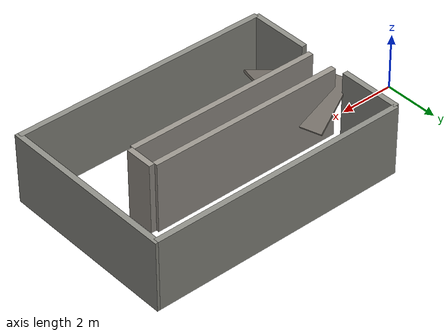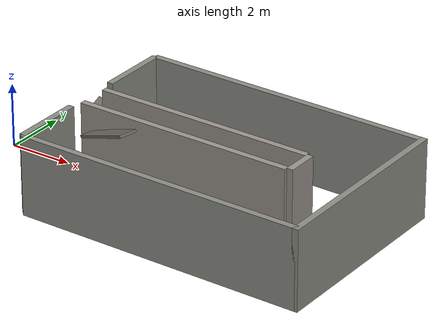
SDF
<sdf version="1.9">
 <world name="selene_base">
  <physics type="ode">
   <real_time_update_rate>1000.0</real_time_update_rate>
   <max_step_size>0.001</max_step_size>
   <real_time_factor>1</real_time_factor>
   <ode>
    <solver>
     <type>quick</type>
     <iters>150</iters>
     <sor>1.4</sor>
     <use_dynamic_moi_rescaling>true</use_dynamic_moi_rescaling>
    </solver>
    <constraints>
     <cfm>0.00001</cfm>
     <erp>0.2</erp>
     <contact_max_correcting_vel>2000.0</contact_max_correcting_vel>
     <contact_surface_layer>0.01</contact_surface_layer>
    </constraints>
   </ode>
  </physics>
  <plugin filename="gz-sim-physics-system" name="gz::sim::systems::Physics"/>
  <plugin filename="gz-sim-user-commands-system" name="gz::sim::systems::UserCommands"/>
  <plugin filename="gz-sim-scene-broadcaster-system" name="gz::sim::systems::SceneBroadcaster"/>
  <plugin filename="gz-sim-sensors-system" name="gz::sim::systems::Sensors">
   <render_engine>ogre2</render_engine>
  </plugin>
  <plugin filename="gz-sim-contact-system" name="gz::sim::systems::Contact"/>
  <plugin filename="gz-sim-imu-system" name="gz::sim::systems::Imu"/>
  <light type="directional" name="sun">
   <pose>0 0 10 0 0 0</pose>
   <diffuse>0.85 0.85 0.80 1</diffuse>
   <specular>0.15 0.15 0.12 1</specular>
   <attenuation>
    <range>1000</range>
    <constant>0.9</constant>
    <linear>0.01</linear>
    <quadratic>0.001</quadratic>
   </attenuation>
   <direction>-0.3 0.2 -0.9</direction>
  </light>
  <model name="habitat">
   <static>true</static>
   <link name="wall_north">
    <pose>7.5 3.1 1.25 0 0 0</pose>
    <collision name="col"><geometry><box><size>9.2 0.2 2.5</size></box></geometry></collision>
    <visual name="vis">
     <geometry><box><size>9.2 0.2 2.5</size></box></geometry>
     <material><ambient>0.55 0.55 0.52 1</ambient><diffuse>0.55 0.55 0.52 1</diffuse></material>
    </visual>
   </link>
   <link name="wall_south">
    <pose>7.5 -3.1 1.25 0 0 0</pose>
    <collision name="col"><geometry><box><size>9.2 0.2 2.5</size></box></geometry></collision>
    <visual name="vis">
     <geometry><box><size>9.2 0.2 2.5</size></box></geometry>
     <material><ambient>0.55 0.55 0.52 1</ambient><diffuse>0.55 0.55 0.52 1</diffuse></material>
    </visual>
   </link>
   <link name="wall_east">
    <pose>12.1 0 1.25 0 0 0</pose>
    <collision name="col"><geometry><box><size>0.2 6.4 2.5</size></box></geometry></collision>
    <visual name="vis">
     <geometry><box><size>0.2 6.4 2.5</size></box></geometry>
     <material><ambient>0.55 0.55 0.52 1</ambient><diffuse>0.55 0.55 0.52 1</diffuse></material>
    </visual>
   </link>
   <link name="wall_west_north">
    <pose>2.9 2.0 1.25 0 0 0</pose>
    <collision name="col"><geometry><box><size>0.2 2.2 2.5</size></box></geometry></collision>
    <visual name="vis">
     <geometry><box><size>0.2 2.2 2.5</size></box></geometry>
     <material><ambient>0.55 0.55 0.52 1</ambient><diffuse>0.55 0.55 0.52 1</diffuse></material>
    </visual>
   </link>
   <link name="wall_west_south">
    <pose>2.9 -2.0 1.25 0 0 0</pose>
    <collision name="col"><geometry><box><size>0.2 2.2 2.5</size></box></geometry></collision>
    <visual name="vis">
     <geometry><box><size>0.2 2.2 2.5</size></box></geometry>
     <material><ambient>0.55 0.55 0.52 1</ambient><diffuse>0.55 0.55 0.52 1</diffuse></material>
    </visual>
   </link>
   <link name="corridor_left">
    <pose>6.5 0.5 1.25 0 0 0</pose>
    <collision name="col"><geometry><box><size>7.0 0.2 2.5</size></box></geometry></collision>
    <visual name="vis">
     <geometry><box><size>7.0 0.2 2.5</size></box></geometry>
     <material><ambient>0.60 0.58 0.55 1</ambient><diffuse>0.60 0.58 0.55 1</diffuse></material>
    </visual>
   </link>
   <link name="corridor_right">
    <pose>6.5 -0.5 1.25 0 0 0</pose>
    <collision name="col"><geometry><box><size>7.0 0.2 2.5</size></box></geometry></collision>
    <visual name="vis">
     <geometry><box><size>7.0 0.2 2.5</size></box></geometry>
     <material><ambient>0.60 0.58 0.55 1</ambient><diffuse>0.60 0.58 0.55 1</diffuse></material>
    </visual>
   </link>
   <link name="corridor_end">
    <pose>10.1 0 1.25 0 0 0</pose>
    <collision name="col"><geometry><box><size>0.2 1.0 2.5</size></box></geometry></collision>
    <visual name="vis">
     <geometry><box><size>0.2 1.0 2.5</size></box></geometry>
     <material><ambient>0.60 0.58 0.55 1</ambient><diffuse>0.60 0.58 0.55 1</diffuse></material>
    </visual>
   </link>
   <link name="collapsed_panel_a">
    <pose>3.5 0.7 1.5 0 0.5 0.3</pose>
    <collision name="col"><geometry><box><size>2.0 0.8 0.08</size></box></geometry></collision>
    <visual name="vis">
     <geometry><box><size>2.0 0.8 0.08</size></box></geometry>
     <material><ambient>0.45 0.43 0.40 1</ambient><diffuse>0.45 0.43 0.40 1</diffuse></material>
    </visual>
   </link>
   <link name="collapsed_panel_b">
    <pose>4.2 -0.9 2.0 0 -0.35 -0.2</pose>
    <collision name="col"><geometry><box><size>1.8 0.6 0.08</size></box></geometry></collision>
    <visual name="vis">
     <geometry><box><size>1.8 0.6 0.08</size></box></geometry>
     <material><ambient>0.45 0.43 0.40 1</ambient><diffuse>0.45 0.43 0.40 1</diffuse></material>
    </visual>
   </link>
   <link name="debris_1">
    <pose>3.3 -0.6 0.15 0.1 0 0.4</pose>
    <collision name="col"><geometry><box><size>0.4 0.3 0.3</size></box></geometry></collision>
    <visual name="vis">
     <geometry><box><size>0.4 0.3 0.3</size></box></geometry>
     <material><ambient>0.50 0.48 0.45 1</ambient><diffuse>0.50 0.48 0.45 1</diffuse></material>
    </visual>
   </link>
   <link name="debris_2">
    <pose>3.8 0.3 0.1 0 0.15 -0.3</pose>
    <collision name="col"><geometry><box><size>0.3 0.25 0.2</size></box></geometry></collision>
    <visual name="vis">
     <geometry><box><size>0.3 0.25 0.2</size></box></geometry>
     <material><ambient>0.50 0.48 0.45 1</ambient><diffuse>0.50 0.48 0.45 1</diffuse></material>
    </visual>
   </link>
   <link name="leak_marker">
    <pose>9.8 0 0.15 0 0 0</pose>
    <visual name="vis">
     <geometry><cylinder><radius>0.08</radius><length>0.3</length></cylinder></geometry>
     <material>
      <ambient>0.9 0.25 0.05 1</ambient>
      <diffuse>0.9 0.25 0.05 1</diffuse>
      <emissive>0.6 0.15 0.02 1</emissive>
     </material>
    </visual>
   </link>
  </model>
 </world>
</sdf>
